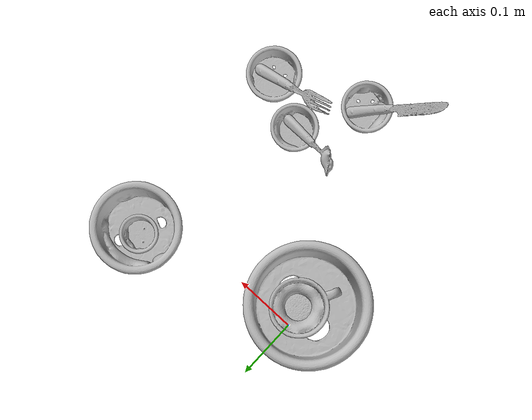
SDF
<?xml version="1.0" ?>
<sdf version="1.4">

  <world name="default">

    <light name="light1" type="point">

      <pose>0 0 1 0 0 0</pose>

      <diffuse>3 3 3 1</diffuse>

      <specular>3 3 3 1</specular>

    </light>

    <light name="light2" type="point">

      <pose>0 0.5 2 0 0 0</pose>

      <diffuse>1 1 1 1</diffuse>

      <specular>1 1 1 1</specular>

    </light>

    <light name="light3" type="point">

      <pose>0 0.5 2 0 0 0</pose>

      <diffuse>3 3 3 1</diffuse>

      <specular>3 3 3 1</specular>

    </light>

    <scene>

      <ambient>0.7 0.7 0.7</ambient>

    </scene>

    <model name="cup1">

      <link name="link_cup1">

        <collision name="default">

          <geometry>

            <mesh>

              <uri>model://e_cups/collision_meshes/collision.obj</uri>

              <scale>1.0 1.0 1.0</scale>

            </mesh>

          </geometry>

          <surface>

            <friction>

              <ode>

                <mu>0.5</mu>

                <mu2>0.5</mu2>

              </ode>

            </friction>

          </surface>

        </collision>

        <visual name="default">

          <geometry>

            <mesh>

              <uri>model://e_cups/visual_meshes/visual.dae</uri>

              <scale>1.0 1.0 1.0</scale>

            </mesh>

          </geometry>

        </visual>

        <inertial>

          <mass>0.07679437845945358</mass>

          <pose>0.001135574304498732 0.002879783743992448 -0.0038829718250781298 0.6952411595659588 0.08767733322521654 -0.5235244631248706</pose>

          <inertia>

            <ixx>6.771342e-05</ixx>

            <iyy>7.077022e-05</iyy>

            <izz>6.4741864e-05</izz>

            <ixy>0</ixy>

            <ixz>0</ixz>

            <iyz>0</iyz>

          </inertia>

        </inertial>

      </link>

      <pose>0.20110498368740082 -0.23011592030525208 0.035582538694143295 0.00886138991540037 -0.011210327571168563 -0.014922364696312277</pose>

    </model>

    <model name="silverware1">

      <link name="link_silverware1">

        <collision name="default">

          <geometry>

            <mesh>

              <uri>model://spoon/collision_meshes/collision.obj</uri>

              <scale>1.0 1.0 1.0</scale>

            </mesh>

          </geometry>

          <surface>

            <friction>

              <ode>

                <mu>0.5</mu>

                <mu2>0.5</mu2>

              </ode>

            </friction>

          </surface>

        </collision>

        <visual name="default">

          <geometry>

            <mesh>

              <uri>model://spoon/visual_meshes/visual.dae</uri>

              <scale>1.0 1.0 1.0</scale>

            </mesh>

          </geometry>

        </visual>

        <inertial>

          <mass>0.015083584003150463</mass>

          <pose>-0.005526313092559576 -0.001603418029844761 -0.000727165665011853 0.035216710638299134 -0.03906584880684835 0.006150613179751253</pose>

          <inertia>

            <ixx>8.389734e-07</ixx>

            <iyy>5.739254e-05</iyy>

            <izz>5.7806283e-05</izz>

            <ixy>0</ixy>

            <ixz>0</ixz>

            <iyz>0</iyz>

          </inertia>

        </inertial>

      </link>

      <pose>0.16556662321090698 -0.2281470000743866 0.09084995090961456 0.8700903826121452 -0.9019670480739324 2.987165449261723</pose>

    </model>

    <model name="cup2">

      <link name="link_cup2">

        <collision name="default">

          <geometry>

            <mesh>

              <uri>model://g_cups/collision_meshes/collision.obj</uri>

              <scale>1.0 1.0 1.0</scale>

            </mesh>

          </geometry>

          <surface>

            <friction>

              <ode>

                <mu>0.5</mu>

                <mu2>0.5</mu2>

              </ode>

            </friction>

          </surface>

        </collision>

        <visual name="default">

          <geometry>

            <mesh>

              <uri>model://g_cups/visual_meshes/visual.dae</uri>

              <scale>1.0 1.0 1.0</scale>

            </mesh>

          </geometry>

        </visual>

        <inertial>

          <mass>0.04187431186437607</mass>

          <pose>-0.0007946277037262917 -4.2064348235726357e-05 -0.0021329382434487343 -0.21382305588888167 -0.31410659578681893 0.31120215507532384</pose>

          <inertia>

            <ixx>4.8876722e-05</ixx>

            <iyy>4.871046e-05</iyy>

            <izz>5.0627856e-05</izz>

            <ixy>0</ixy>

            <ixz>0</ixz>

            <iyz>0</iyz>

          </inertia>

        </inertial>

      </link>

      <pose>0.28039929270744324 -0.2699412703514099 0.03720371052622795 -2.2819571023384082e-06 -3.215121561505598e-05 -0.017024415942232012</pose>

    </model>

    <model name="silverware2">

      <link name="link_silverware2">

        <collision name="default">

          <geometry>

            <mesh>

              <uri>model://fork/collision_meshes/collision.obj</uri>

              <scale>1.0 1.0 1.0</scale>

            </mesh>

          </geometry>

          <surface>

            <friction>

              <ode>

                <mu>0.5</mu>

                <mu2>0.5</mu2>

              </ode>

            </friction>

          </surface>

        </collision>

        <visual name="default">

          <geometry>

            <mesh>

              <uri>model://fork/visual_meshes/visual.dae</uri>

              <scale>1.0 1.0 1.0</scale>

            </mesh>

          </geometry>

        </visual>

        <inertial>

          <mass>0.025364622473716736</mass>

          <pose>-0.029570050537586212 0.00046588227269239724 0.00032188615296036005 -0.013551666838441594 -0.010977837199147297 0.014453899745261501</pose>

          <inertia>

            <ixx>8.8917335e-07</ixx>

            <iyy>6.621973e-05</iyy>

            <izz>6.661743e-05</izz>

            <ixy>0</ixy>

            <ixz>0</ixz>

            <iyz>0</iyz>

          </inertia>

        </inertial>

      </link>

      <pose>0.24489854276180267 -0.2712588906288147 0.08370400965213776 -2.4770299366407857 -0.8290363432275479 -3.057291884736712</pose>

    </model>

    <model name="cup3">

      <link name="link_cup3">

        <collision name="default">

          <geometry>

            <mesh>

              <uri>model://f_cups/collision_meshes/collision.obj</uri>

              <scale>1.0 1.0 1.0</scale>

            </mesh>

          </geometry>

          <surface>

            <friction>

              <ode>

                <mu>0.5</mu>

                <mu2>0.5</mu2>

              </ode>

            </friction>

          </surface>

        </collision>

        <visual name="default">

          <geometry>

            <mesh>

              <uri>model://f_cups/visual_meshes/visual.dae</uri>

              <scale>1.0 1.0 1.0</scale>

            </mesh>

          </geometry>

        </visual>

        <inertial>

          <mass>0.08338716626167297</mass>

          <pose>-0.0031714679207652807 -0.0006240069633349776 -0.003655536798760295 0.7862348245142414 -0.2607950949044878 -0.18237232658982702</pose>

          <inertia>

            <ixx>7.838616e-05</ixx>

            <iyy>8.222797e-05</iyy>

            <izz>8.560161e-05</izz>

            <ixy>0</ixy>

            <ixz>0</ixz>

            <iyz>0</iyz>

          </inertia>

        </inertial>

      </link>

      <pose>0.13984885811805725 -0.33008038997650146 0.0363059900701046 7.754592232211369e-06 5.777614242529033e-06 0.06870875463555916</pose>

    </model>

    <model name="silverware3">

      <link name="link_silverware3">

        <collision name="default">

          <geometry>

            <mesh>

              <uri>model://knife/collision_meshes/collision.obj</uri>

              <scale>1.0 1.0 1.0</scale>

            </mesh>

          </geometry>

          <surface>

            <friction>

              <ode>

                <mu>0.5</mu>

                <mu2>0.5</mu2>

              </ode>

            </friction>

          </surface>

        </collision>

        <visual name="default">

          <geometry>

            <mesh>

              <uri>model://knife/visual_meshes/visual.dae</uri>

              <scale>1.0 1.0 1.0</scale>

            </mesh>

          </geometry>

        </visual>

        <inertial>

          <mass>0.015509607270359993</mass>

          <pose>-0.02378525398671627 0.0015275129117071629 5.0620248657651246e-05 0.07305981518176793 0.01724841487141605 -0.0074098192082968535</pose>

          <inertia>

            <ixx>4.4022548e-07</ixx>

            <iyy>5.95854e-05</iyy>

            <izz>5.9727172e-05</izz>

            <ixy>0</ixy>

            <ixz>0</ixz>

            <iyz>0</iyz>

          </inertia>

        </inertial>

      </link>

      <pose>0.10268350690603256 -0.35400569438934326 0.0894225463271141 0.1482619767137668 -0.8325005051487837 -2.454958756923411</pose>

    </model>

    <model name="cup4">

      <link name="link_cup4">

        <collision name="default">

          <geometry>

            <mesh>

              <uri>model://d_cups/collision_meshes/collision.obj</uri>

              <scale>2.0 2.0 2.0</scale>

            </mesh>

          </geometry>

          <surface>

            <friction>

              <ode>

                <mu>0.5</mu>

                <mu2>0.5</mu2>

              </ode>

            </friction>

          </surface>

        </collision>

        <visual name="default">

          <geometry>

            <mesh>

              <uri>model://d_cups/visual_meshes/visual.dae</uri>

              <scale>2.0 2.0 2.0</scale>

            </mesh>

          </geometry>

        </visual>

        <inertial>

          <mass>0.5481204390525818</mass>

          <pose>0.001613611588254571 0.0038234798703342676 -0.0045333015732467175 0.2401214667218237 -0.2470996070340832 0.5942599316130982</pose>

          <inertia>

            <ixx>0.001835623</ixx>

            <iyy>0.0018303102</iyy>

            <izz>0.0016615508</izz>

            <ixy>0</ixy>

            <ixz>0</ixz>

            <iyz>0</iyz>

          </inertia>

        </inertial>

      </link>

      <pose>0.27017608284950256 0.04998023435473442 0.0693180114030838 -3.5271545876933137e-07 -9.059774645061398e-08 0.5709761697986593</pose>

    </model>

    <model name="cup41">

      <link name="link_cup41">

        <collision name="default">

          <geometry>

            <mesh>

              <uri>model://b_cups/collision_meshes/collision.obj</uri>

              <scale>1.0 1.0 1.0</scale>

            </mesh>

          </geometry>

          <surface>

            <friction>

              <ode>

                <mu>0.5</mu>

                <mu2>0.5</mu2>

              </ode>

            </friction>

          </surface>

        </collision>

        <visual name="default">

          <geometry>

            <mesh>

              <uri>model://b_cups/visual_meshes/visual.dae</uri>

              <scale>1.0 1.0 1.0</scale>

            </mesh>

          </geometry>

        </visual>

        <inertial>

          <mass>0.04462150111794472</mass>

          <pose>0.0005182005697861314 0.0018058601999655366 -0.0013381819007918239 0.11356336410280554 0.038725039404113405 -0.3456939711537357</pose>

          <inertia>

            <ixx>2.9207904e-05</ixx>

            <iyy>2.8653376e-05</iyy>

            <izz>2.45779e-05</izz>

            <ixy>0</ixy>

            <ixz>0</ixz>

            <iyz>0</iyz>

          </inertia>

        </inertial>

      </link>

      <pose>0.2650493085384369 0.053295284509658813 0.04863322153687477 -0.017686885081552785 -0.008738015226855602 -0.08892877676814434</pose>

    </model>

    <model name="cup5">

      <link name="link_cup5">

        <collision name="default">

          <geometry>

            <mesh>

              <uri>model://i_cups/collision_meshes/collision.obj</uri>

              <scale>2.0 2.0 2.0</scale>

            </mesh>

          </geometry>

          <surface>

            <friction>

              <ode>

                <mu>0.5</mu>

                <mu2>0.5</mu2>

              </ode>

            </friction>

          </surface>

        </collision>

        <visual name="default">

          <geometry>

            <mesh>

              <uri>model://i_cups/visual_meshes/visual.dae</uri>

              <scale>2.0 2.0 2.0</scale>

            </mesh>

          </geometry>

        </visual>

        <inertial>

          <mass>0.7183689475059509</mass>

          <pose>0.00022480347251985222 0.0003359461552463472 -0.0017158043337985873 -0.028983189607302198 -0.03987301698166741 -0.34590760218104494</pose>

          <inertia>

            <ixx>0.0039783698</ixx>

            <iyy>0.004013422</iyy>

            <izz>0.0044464725</izz>

            <ixy>0</ixy>

            <ixz>0</ixz>

            <iyz>0</iyz>

          </inertia>

        </inertial>

      </link>

      <pose>-0.00030939956195652485 -0.040021397173404694 0.07554947584867477 0.0019122113565990674 -0.006371743846461835 -0.5882356168716766</pose>

    </model>

    <model name="cup51">

      <link name="link_cup51">

        <collision name="default">

          <geometry>

            <mesh>

              <uri>model://mug/collision_meshes/collision.obj</uri>

              <scale>1.0 1.0 1.0</scale>

            </mesh>

          </geometry>

          <surface>

            <friction>

              <ode>

                <mu>0.5</mu>

                <mu2>0.5</mu2>

              </ode>

            </friction>

          </surface>

        </collision>

        <visual name="default">

          <geometry>

            <mesh>

              <uri>model://mug/visual_meshes/visual.dae</uri>

              <scale>1.0 1.0 1.0</scale>

            </mesh>

          </geometry>

        </visual>

        <inertial>

          <mass>0.1239403635263443</mass>

          <pose>0.009571672417223454 0.0008143244776874781 -0.01094733364880085 -0.12983126758676797 0.08737752450174939 0.055073145905888306</pose>

          <inertia>

            <ixx>0.0001231125</ixx>

            <iyy>0.00013750937</iyy>

            <izz>0.00015903146</izz>

            <ixy>0</ixy>

            <ixz>0</ixz>

            <iyz>0</iyz>

          </inertia>

        </inertial>

      </link>

      <pose>0.0025922954082489014 -0.0405392162501812 0.05829710513353348 -0.008297508942257507 0.0004862917789336572 1.1127258347399236</pose>

    </model>

  </world>

</sdf>
